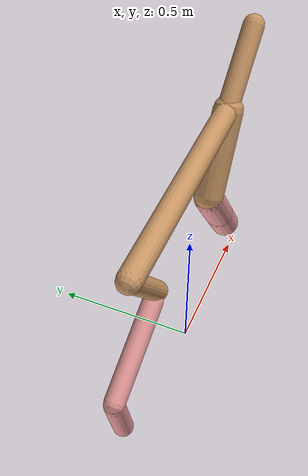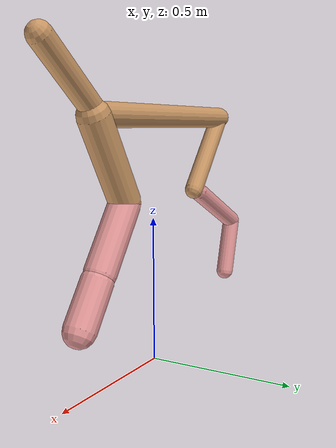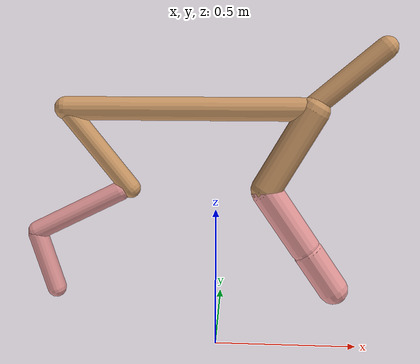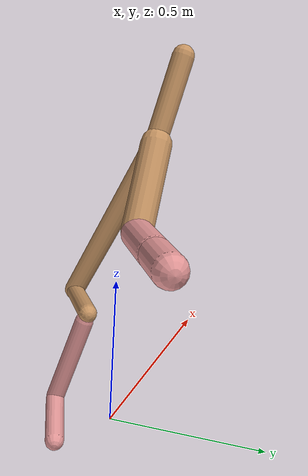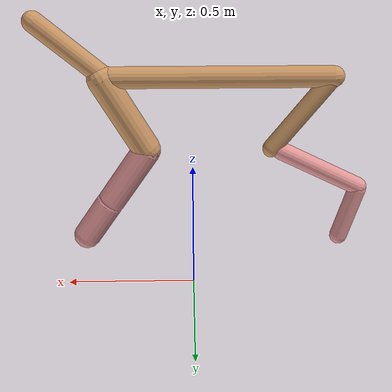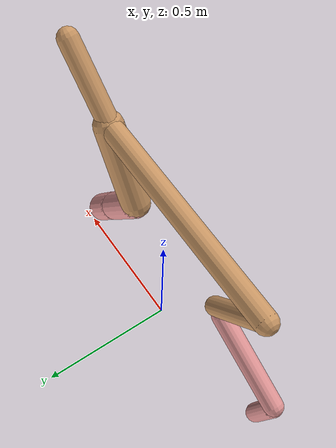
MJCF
<mujoco model="cheetah">
  <compiler angle="radian" coordinate="local" inertiafromgeom="true" settotalmass="14" />
  <default>
    <joint armature=".1" damping=".01" limited="true" solimplimit="0 .8 .03" solreflimit=".02 1" stiffness="8" />
    <geom conaffinity="0" condim="3" contype="1" friction="0.8 .1 .1" rgba="0.8 0.6 .4 1" solimp="0.0 0.8 0.01" solref="0.02 1" />
    <motor ctrllimited="true" ctrlrange="-1 1" />
  </default>
  <size nstack="300000" nuser_geom="1" />
  <option gravity="0 0 -9.81" timestep="0.01" />
  <worldbody>
    <body name="torso" pos="0.0 0.0 0.8449784596097392">
      <joint armature="0" axis="1 0 0" damping="0" limited="false" name="ignorex" pos="0 0 0" stiffness="0" type="slide" />
      <joint armature="0" axis="0 0 1" damping="0" limited="false" name="ignorez" pos="0 0 0" stiffness="0" type="slide" />
      <joint armature="0" axis="0 1 0" damping="0" limited="false" name="ignorey" pos="0 0 0" stiffness="0" type="hinge" />
      <geom fromto="-0.5 0.0 0.0 0.3264148698633157 0.0 0.0" name="torso" size="0.039291252805491825" type="capsule" />
      <geom axisangle="0 1 0 .87" name="head" pos="0.42641486986331567 0.0 0.1" size="0.037254633759226205 0.15" type="capsule" />

      <body name="bthigh" pos="-.5 0 0">
        <joint axis="0 1 0" damping="6" name="bthigh" pos="0 0 0" range="-.52 1.05" stiffness="240" type="hinge" />
        <geom axisangle="0 1 0 -3.8" name="bthigh" pos="0.1102400163330017 0.0 -0.1433120212329022" size="0.03370463523842463 0.16179487552217584" type="capsule" />
        <body name="bshin" pos="0.1804800326660034 0.0 -0.2766240424658044">
          <joint axis="0 1 0" damping="4.5" name="bshin" pos="0 0 0" range="-.785 .785" stiffness="180" type="hinge" />
          <geom axisangle="0 1 0 -2.03" name="bshin" pos="-0.15553978621016518 0.0 -0.07776989310508259" rgba="0.9 0.6 0.6 1" size="0.03370463523842463 0.16737400916087156" type="capsule" />
          <body name="bfoot" pos="-0.31107957242033035 0.0 -0.15553978621016518">
            <joint axis="0 1 0" damping="3" name="bfoot" pos="0 0 0" range="-.4 .785" stiffness="120" type="hinge" />
            <geom axisangle="0 1 0 -.27" name="bfoot" pos="0.03321698936829313 0.0 -0.10740159895748112" rgba="0.9 0.6 0.6 1" size="0.03370463523842463 0.10488771240747952" type="capsule" />
            <inertial mass="10" />
          </body>
        </body>
      </body>
      <body name="fthigh" pos="0.3264148698633157 0.0 0.0">
        <joint axis="0 1 0" damping="4.5" name="fthigh" pos="0 0 0" range="-1.5 0.8" stiffness="180" type="hinge" />
        <geom axisangle="0 1 0 .52" name="fthigh" pos="-0.08016287573356423 0.0 -0.1374220726861101" size="0.052481408531377456 0.15316959741432565" type="capsule" />
        <body name="fshin" pos="-0.16032575146712846 0.0 -0.2748441453722202">
          <joint axis="0 1 0" damping="3" name="fshin" pos="0 0 0" range="-1.2 1.1" stiffness="120" type="hinge" />
          <geom axisangle="0 1 0 -.6" name="fshin" pos="0.07441177089217078 0.0 -0.10303168277377492" rgba="0.9 0.6 0.6 1" size="0.052481408531377456 0.12207501748810914" type="capsule" />
          <body name="ffoot" pos="0.14882354178434157 0.0 -0.20606336554754984">
            <joint axis="0 1 0" damping="1.5" name="ffoot" pos="0 0 0" range="-3.1 -0.3" stiffness="60" type="hinge" />
            <geom axisangle="0 1 0 -.6" name="ffoot" pos="0.05074045416607037 0.0 -0.07892959536944281" rgba="0.9 0.6 0.6 1" size="0.052481408531377456 0.08061557758648719" type="capsule" />
            <inertial mass="10" />
          </body>
        </body>
      </body>
    </body>
  </worldbody>
  <actuator>
    <motor gear="120" joint="bthigh" name="bthigh" />
    <motor gear="90" joint="bshin" name="bshin" />
    <motor gear="60" joint="bfoot" name="bfoot" />
    <motor gear="120" joint="fthigh" name="fthigh" />
    <motor gear="60" joint="fshin" name="fshin" />
    <motor gear="30" joint="ffoot" name="ffoot" />
  </actuator>
</mujoco>
